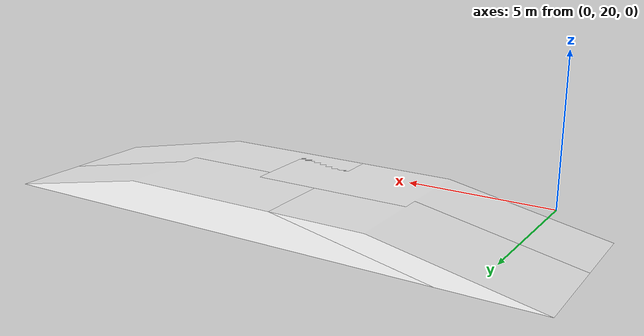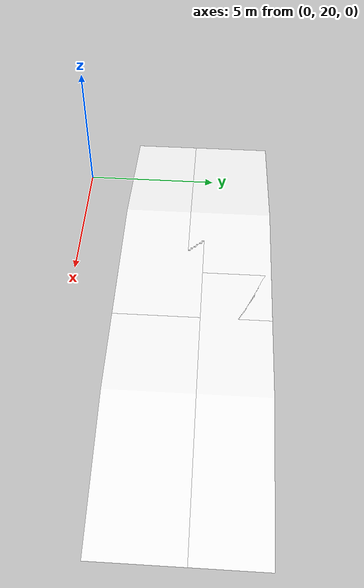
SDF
<sdf version="1.7">
 <world name="default">
  <light name="sun" type="directional">
   <pose>-44 0 10 0 -0 0</pose>
   <diffuse>255 255 255 255</diffuse>
   <specular>255 255 255 255</specular>
   <attenuation>
    <range>1000</range>
    <constant>0.9</constant>
    <linear>0.01</linear>
    <quadratic>0.001</quadratic>
   </attenuation>
   <direction>0.578 0.752 -0.3156</direction>
   <spot><inner_angle>0</inner_angle><outer_angle>0</outer_angle><falloff>0</falloff></spot>
  </light>
  <gravity>0 0 -9.8</gravity>
  <magnetic_field>6e-06 2.3e-05 -4.2e-05</magnetic_field>
  <atmosphere type="adiabatic"/>
  <physics type="ode">
   <max_step_size>0.001</max_step_size>
   <real_time_factor>1</real_time_factor>
   <real_time_update_rate>1000</real_time_update_rate>
  </physics>
  <scene><ambient>0.4 0.4 0.4 1</ambient><background>0.7 0.7 0.7 1</background><shadows>1</shadows></scene>
  <audio><device>default</device></audio>
  <spherical_coordinates>
   <surface_model>EARTH_WGS84</surface_model>
   <latitude_deg>0</latitude_deg>
   <longitude_deg>0</longitude_deg>
   <elevation>0</elevation>
   <heading_deg>0</heading_deg>
  </spherical_coordinates>
  <model name="won2">
   <static>1</static>
   <link name="link">
    <collision name="collision">
     <geometry><mesh><uri>model://won2/meshes/won2.dae</uri><scale>0.001 0.001 0.001</scale></mesh></geometry>
    </collision>
    <visual name="visual">
     <geometry><mesh><uri>model://won2/meshes/won2.dae</uri><scale>0.001 0.001 0.001</scale></mesh></geometry>
     <material><ambient>1 1 1 1</ambient><diffuse>1 1 1 1</diffuse><specular>0.5 0.5 0.5 1</specular></material>
    </visual>
   </link>
   <pose>-111.871 -78.0214 0 0 -0 0</pose>
  </model>
  <model name="won2_clone">
   <static>1</static>
   <link name="link">
    <collision name="collision">
     <geometry><mesh><uri>model://won2/meshes/won2.dae</uri><scale>0.001 0.001 0.001</scale></mesh></geometry>
    </collision>
    <visual name="visual">
     <geometry><mesh><uri>model://won2/meshes/won2.dae</uri><scale>0.001 0.001 0.001</scale></mesh></geometry>
     <material><ambient>1 1 1 1</ambient><diffuse>1 1 1 1</diffuse><specular>0.5 0.5 0.5 1</specular></material>
    </visual>
   </link>
   <pose>-111.872 -75.5815 0 0 -0 0</pose>
  </model>
  <model name="won2_clone_0">
   <static>1</static>
   <link name="link">
    <collision name="collision">
     <geometry><mesh><uri>model://won2/meshes/won2.dae</uri><scale>0.001 0.001 0.001</scale></mesh></geometry>
    </collision>
    <visual name="visual">
     <geometry><mesh><uri>model://won2/meshes/won2.dae</uri><scale>0.001 0.001 0.001</scale></mesh></geometry>
     <material><ambient>1 1 1 1</ambient><diffuse>1 1 1 1</diffuse><specular>0.5 0.5 0.5 1</specular></material>
    </visual>
   </link>
   <pose>-114.871 -78.02 0 0 -0 0</pose>
  </model>
  <model name="won2_clone_clone">
   <static>1</static>
   <link name="link">
    <collision name="collision">
     <geometry><mesh><uri>model://won2/meshes/won2.dae</uri><scale>0.001 0.001 0.001</scale></mesh></geometry>
    </collision>
    <visual name="visual">
     <geometry><mesh><uri>model://won2/meshes/won2.dae</uri><scale>0.001 0.001 0.001</scale></mesh></geometry>
     <material><ambient>1 1 1 1</ambient><diffuse>1 1 1 1</diffuse><specular>0.5 0.5 0.5 1</specular></material>
    </visual>
   </link>
   <pose>-114.872 -75.582 0 0 -0 0</pose>
  </model>
 </world>
</sdf>
